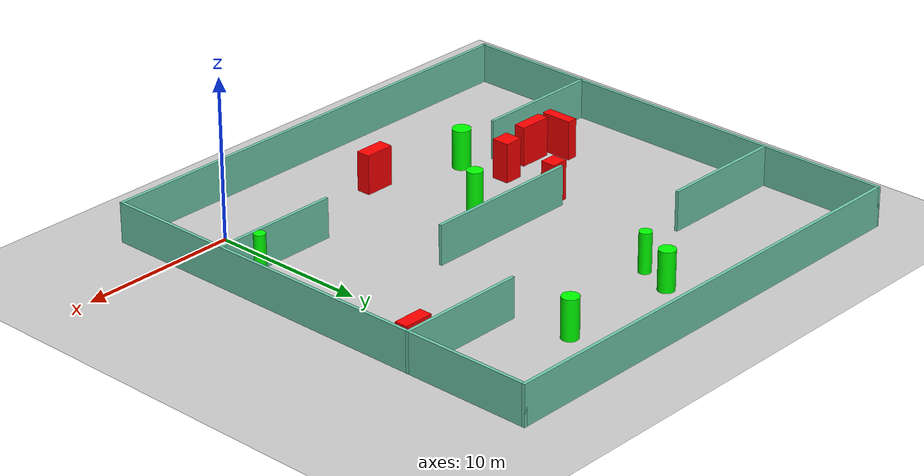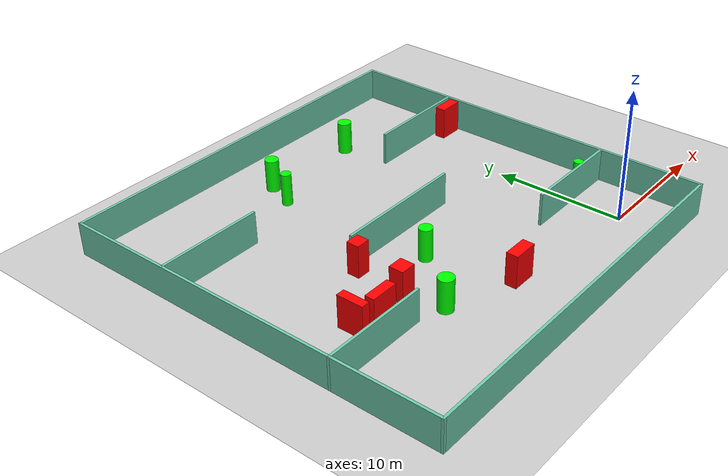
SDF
<sdf version="1.7">
 <world name="default">
  <light name="sun" type="directional">
   <pose>0 0 10 0 -0 0</pose>
   <diffuse>0.8 0.8 0.8 1</diffuse>
   <specular>0.2 0.2 0.2 1</specular>
   <attenuation>
    <range>1000</range>
    <constant>0.9</constant>
    <linear>0.01</linear>
    <quadratic>0.001</quadratic>
   </attenuation>
   <direction>-0.5 0.1 -0.9</direction>
   <spot><inner_angle>0</inner_angle><outer_angle>0</outer_angle><falloff>0</falloff></spot>
  </light>
  <model name="ground_plane">
   <static>1</static>
   <link name="link">
    <collision name="collision">
     <geometry><plane><normal>0 0 1</normal><size>100 100</size></plane></geometry>
     <surface>
      <contact><collide_bitmask>65535</collide_bitmask></contact>
      <friction><ode><mu>100</mu><mu2>50</mu2></ode></friction>
     </surface>
    </collision>
    <visual name="visual">
     <cast_shadows>0</cast_shadows>
     <geometry><plane><normal>0 0 1</normal><size>100 100</size></plane></geometry>
     <material>
      <script><uri>file://media/materials/scripts/gazebo.material</uri><name>Gazebo/Grey</name></script>
     </material>
    </visual>
   </link>
  </model>
  <gravity>0 0 -9.8</gravity>
  <magnetic_field>6e-06 2.3e-05 -4.2e-05</magnetic_field>
  <atmosphere type="adiabatic"/>
  <physics type="ode">
   <max_step_size>0.001</max_step_size>
   <real_time_factor>1</real_time_factor>
   <real_time_update_rate>1000</real_time_update_rate>
  </physics>
  <scene><ambient>0.4 0.4 0.4 1</ambient><background>0.7 0.7 0.7 1</background><shadows>1</shadows></scene>
  <spherical_coordinates>
   <surface_model>EARTH_WGS84</surface_model>
   <latitude_deg>0</latitude_deg>
   <longitude_deg>0</longitude_deg>
   <elevation>0</elevation>
   <heading_deg>0</heading_deg>
  </spherical_coordinates>
  <model name="my_base_walls">
   <link name="Wall_10">
    <collision name="Wall_10_Collision">
     <geometry><box><size>8.2 0.2 2.5</size></box></geometry>
     <pose>0 0 1.25 0 -0 0</pose>
    </collision>
    <visual name="Wall_10_Visual">
     <pose>0 0 1.25 0 -0 0</pose>
     <geometry><box><size>8.2 0.2 2.5</size></box></geometry>
     <material>
      <script><uri>file://media/materials/scripts/gazebo.material</uri><name>Gazebo/Grey</name></script>
      <ambient>0.435294 0.796078 0.67451 1</ambient>
     </material>
     <meta><layer>0</layer></meta>
    </visual>
    <pose>-11 -7 0 0 -0 0</pose>
   </link>
   <link name="Wall_12">
    <collision name="Wall_12_Collision">
     <geometry><box><size>8.2 0.2 2.5</size></box></geometry>
     <pose>0 0 1.25 0 -0 0</pose>
    </collision>
    <visual name="Wall_12_Visual">
     <pose>0 0 1.25 0 -0 0</pose>
     <geometry><box><size>8.2 0.2 2.5</size></box></geometry>
     <material>
      <script><uri>file://media/materials/scripts/gazebo.material</uri><name>Gazebo/Grey</name></script>
      <ambient>0.435294 0.796078 0.67451 1</ambient>
     </material>
     <meta><layer>0</layer></meta>
    </visual>
    <pose>-11 7 0 0 -0 0</pose>
   </link>
   <link name="Wall_14">
    <collision name="Wall_14_Collision">
     <geometry><box><size>8.2 0.2 2.5</size></box></geometry>
     <pose>0 0 1.25 0 -0 0</pose>
    </collision>
    <visual name="Wall_14_Visual">
     <pose>0 0 1.25 0 -0 0</pose>
     <geometry><box><size>8.2 0.2 2.5</size></box></geometry>
     <material>
      <script><uri>file://media/materials/scripts/gazebo.material</uri><name>Gazebo/Grey</name></script>
      <ambient>0.435294 0.796078 0.67451 1</ambient>
     </material>
     <meta><layer>0</layer></meta>
    </visual>
    <pose>11 7 0 0 -0 3.14159</pose>
   </link>
   <link name="Wall_16">
    <collision name="Wall_16_Collision">
     <geometry><box><size>10.2 0.2 2.5</size></box></geometry>
     <pose>0 0 1.25 0 -0 0</pose>
    </collision>
    <visual name="Wall_16_Visual">
     <pose>0 0 1.25 0 -0 0</pose>
     <geometry><box><size>10.2 0.2 2.5</size></box></geometry>
     <material>
      <script><uri>file://media/materials/scripts/gazebo.material</uri><name>Gazebo/Grey</name></script>
      <ambient>0.435294 0.796078 0.67451 1</ambient>
     </material>
     <meta><layer>0</layer></meta>
    </visual>
    <pose>0 0 0 0 -0 3.14159</pose>
   </link>
   <link name="Wall_2">
    <collision name="Wall_2_Collision">
     <geometry><box><size>30.2 0.2 2.5</size></box></geometry>
     <pose>0 0 1.25 0 -0 0</pose>
    </collision>
    <visual name="Wall_2_Visual">
     <pose>0 0 1.25 0 -0 0</pose>
     <geometry><box><size>30.2 0.2 2.5</size></box></geometry>
     <material>
      <script><uri>file://media/materials/scripts/gazebo.material</uri><name>Gazebo/Grey</name></script>
      <ambient>0.435294 0.796078 0.67451 1</ambient>
     </material>
     <meta><layer>0</layer></meta>
    </visual>
    <pose>0 -15 0 0 -0 3.14159</pose>
   </link>
   <link name="Wall_3">
    <collision name="Wall_3_Collision">
     <geometry><box><size>30.2 0.2 2.5</size></box></geometry>
     <pose>0 0 1.25 0 -0 0</pose>
    </collision>
    <visual name="Wall_3_Visual">
     <pose>0 0 1.25 0 -0 0</pose>
     <geometry><box><size>30.2 0.2 2.5</size></box></geometry>
     <material>
      <script><uri>file://media/materials/scripts/gazebo.material</uri><name>Gazebo/Grey</name></script>
      <ambient>0.435294 0.796078 0.67451 1</ambient>
     </material>
     <meta><layer>0</layer></meta>
    </visual>
    <pose>-15 0 0 0 -0 1.5708</pose>
   </link>
   <link name="Wall_4">
    <collision name="Wall_4_Collision">
     <geometry><box><size>30.2 0.2 2.5</size></box></geometry>
     <pose>0 0 1.25 0 -0 0</pose>
    </collision>
    <visual name="Wall_4_Visual">
     <pose>0 0 1.25 0 -0 0</pose>
     <geometry><box><size>30.2 0.2 2.5</size></box></geometry>
     <material>
      <script><uri>file://media/materials/scripts/gazebo.material</uri><name>Gazebo/Grey</name></script>
      <ambient>0.435294 0.796078 0.67451 1</ambient>
     </material>
     <meta><layer>0</layer></meta>
    </visual>
    <pose>0 15 0 0 -0 0</pose>
   </link>
   <link name="Wall_6">
    <collision name="Wall_6_Collision">
     <geometry><box><size>30.2 0.2 2.5</size></box></geometry>
     <pose>0 0 1.25 0 -0 0</pose>
    </collision>
    <visual name="Wall_6_Visual">
     <pose>0 0 1.25 0 -0 0</pose>
     <geometry><box><size>30.2 0.2 2.5</size></box></geometry>
     <material>
      <script><uri>file://media/materials/scripts/gazebo.material</uri><name>Gazebo/Grey</name></script>
      <ambient>0.435294 0.796078 0.67451 1</ambient>
     </material>
     <meta><layer>0</layer></meta>
    </visual>
    <pose>15 0 0 0 -0 1.5708</pose>
   </link>
   <link name="Wall_8">
    <collision name="Wall_8_Collision">
     <geometry><box><size>8.2 0.2 2.5</size></box></geometry>
     <pose>0 0 1.25 0 -0 0</pose>
    </collision>
    <visual name="Wall_8_Visual">
     <pose>0 0 1.25 0 -0 0</pose>
     <geometry><box><size>8.2 0.2 2.5</size></box></geometry>
     <material>
      <script><uri>file://media/materials/scripts/gazebo.material</uri><name>Gazebo/Grey</name></script>
      <ambient>0.435294 0.796078 0.67451 1</ambient>
     </material>
     <meta><layer>0</layer></meta>
    </visual>
    <pose>11 -7 0 0 -0 3.14159</pose>
   </link>
   <static>1</static>
   <pose>-11 11 0 0 -0 0</pose>
  </model>
  <model name="cylinder1">
   <static>1</static>
   <link name="link">
    <inertial>
     <mass>1</mass>
     <inertia><ixx>0.5</ixx><ixy>0</ixy><ixz>0</ixz><iyy>0.5</iyy><iyz>0</iyz><izz>1</izz></inertia>
    </inertial>
    <collision name="collision">
     <geometry><cylinder><radius>0.5240125677327572</radius><length>2.5</length></cylinder></geometry>
    </collision>
    <visual name="visual">
     <geometry><cylinder><radius>0.5240125677327572</radius><length>2.5</length></cylinder></geometry>
     <material>
      <ambient>0 1 0 1</ambient>
      <diffuse>0 1 0 1</diffuse>
      <specular>0.1 0.1 0.1 1</specular>
      <emissive>0 0 0 0</emissive>
     </material>
    </visual>
   </link>
   <pose>-4.476505955912412 21.69032815345718 1.25 0 0 0</pose>
  </model>
  <model name="cylinder2">
   <static>1</static>
   <link name="link">
    <inertial>
     <mass>1</mass>
     <inertia><ixx>0.5</ixx><ixy>0</ixy><ixz>0</ixz><iyy>0.5</iyy><iyz>0</iyz><izz>1</izz></inertia>
    </inertial>
    <collision name="collision">
     <geometry><cylinder><radius>0.49821827996986834</radius><length>2.5</length></cylinder></geometry>
    </collision>
    <visual name="visual">
     <geometry><cylinder><radius>0.49821827996986834</radius><length>2.5</length></cylinder></geometry>
     <material>
      <ambient>0 1 0 1</ambient>
      <diffuse>0 1 0 1</diffuse>
      <specular>0.1 0.1 0.1 1</specular>
      <emissive>0 0 0 0</emissive>
     </material>
    </visual>
   </link>
   <pose>-12.28555588062819 7.751722992627892 1.25 0 0 0</pose>
  </model>
  <model name="cylinder3">
   <static>1</static>
   <link name="link">
    <inertial>
     <mass>1</mass>
     <inertia><ixx>0.5</ixx><ixy>0</ixy><ixz>0</ixz><iyy>0.5</iyy><iyz>0</iyz><izz>1</izz></inertia>
    </inertial>
    <collision name="collision">
     <geometry><cylinder><radius>0.5781552221268884</radius><length>2.5</length></cylinder></geometry>
    </collision>
    <visual name="visual">
     <geometry><cylinder><radius>0.5781552221268884</radius><length>2.5</length></cylinder></geometry>
     <material>
      <ambient>0 1 0 1</ambient>
      <diffuse>0 1 0 1</diffuse>
      <specular>0.1 0.1 0.1 1</specular>
      <emissive>0 0 0 0</emissive>
     </material>
    </visual>
   </link>
   <pose>-15.918233340697139 3.3667541741993627 1.25 0 0 0</pose>
  </model>
  <model name="cylinder4">
   <static>1</static>
   <link name="link">
    <inertial>
     <mass>1</mass>
     <inertia><ixx>0.5</ixx><ixy>0</ixy><ixz>0</ixz><iyy>0.5</iyy><iyz>0</iyz><izz>1</izz></inertia>
    </inertial>
    <collision name="collision">
     <geometry><cylinder><radius>0.3879290019739724</radius><length>2.5</length></cylinder></geometry>
    </collision>
    <visual name="visual">
     <geometry><cylinder><radius>0.3879290019739724</radius><length>2.5</length></cylinder></geometry>
     <material>
      <ambient>0 1 0 1</ambient>
      <diffuse>0 1 0 1</diffuse>
      <specular>0.1 0.1 0.1 1</specular>
      <emissive>0 0 0 0</emissive>
     </material>
    </visual>
   </link>
   <pose>-12.912665113859187 19.83579759223141 1.25 0 0 0</pose>
  </model>
  <model name="cylinder5">
   <static>1</static>
   <link name="link">
    <inertial>
     <mass>1</mass>
     <inertia><ixx>0.5</ixx><ixy>0</ixy><ixz>0</ixz><iyy>0.5</iyy><iyz>0</iyz><izz>1</izz></inertia>
    </inertial>
    <collision name="collision">
     <geometry><cylinder><radius>0.3575640855265628</radius><length>2.5</length></cylinder></geometry>
    </collision>
    <visual name="visual">
     <geometry><cylinder><radius>0.3575640855265628</radius><length>2.5</length></cylinder></geometry>
     <material>
      <ambient>0 1 0 1</ambient>
      <diffuse>0 1 0 1</diffuse>
      <specular>0.1 0.1 0.1 1</specular>
      <emissive>0 0 0 0</emissive>
     </material>
    </visual>
   </link>
   <pose>1.478976483659082 4.392938628188123 1.25 0 0 0</pose>
  </model>
  <model name="cylinder6">
   <static>1</static>
   <link name="link">
    <inertial>
     <mass>1</mass>
     <inertia><ixx>0.5</ixx><ixy>0</ixy><ixz>0</ixz><iyy>0.5</iyy><iyz>0</iyz><izz>1</izz></inertia>
    </inertial>
    <collision name="collision">
     <geometry><cylinder><radius>0.5133454078234854</radius><length>2.5</length></cylinder></geometry>
    </collision>
    <visual name="visual">
     <geometry><cylinder><radius>0.5133454078234854</radius><length>2.5</length></cylinder></geometry>
     <material>
      <ambient>0 1 0 1</ambient>
      <diffuse>0 1 0 1</diffuse>
      <specular>0.1 0.1 0.1 1</specular>
      <emissive>0 0 0 0</emissive>
     </material>
    </visual>
   </link>
   <pose>-12.078911515969656 22.04261855652612 1.25 0 0 0</pose>
  </model>
  <model name="box1">
   <static>1</static>
   <link name="link">
    <inertial>
     <mass>1</mass>
     <inertia><ixx>0.083</ixx><ixy>0</ixy><ixz>0</ixz><iyy>0.083</iyy><iyz>0</iyz><izz>0.083</izz></inertia>
    </inertial>
    <collision name="collision">
     <geometry><box><size>0.6593336665098478 2.0295318605748136 2.5</size></box></geometry>
    </collision>
    <visual name="visual">
     <geometry><box><size>0.6593336665098478 2.0295318605748136 2.5</size></box></geometry>
     <material>
      <ambient>1 0 0 1</ambient>
      <diffuse>1 0 0 1</diffuse>
      <specular>0.1 0.1 0.1 1</specular>
      <emissive>0 0 0 0</emissive>
     </material>
    </visual>
    <sensor name="my_contact" type="contact">
     <contact><collision>box_collision</collision><topic>__default_topic__</topic></contact>
    </sensor>
   </link>
   <pose>-21.126106339734644 6.455318350802081 1.25 0 0 0</pose>
  </model>
  <model name="box2">
   <static>1</static>
   <link name="link">
    <inertial>
     <mass>1</mass>
     <inertia><ixx>0.083</ixx><ixy>0</ixy><ixz>0</ixz><iyy>0.083</iyy><iyz>0</iyz><izz>0.083</izz></inertia>
    </inertial>
    <collision name="collision">
     <geometry><box><size>1.8735056238569119 0.8171309436889633 2.5</size></box></geometry>
    </collision>
    <visual name="visual">
     <geometry><box><size>1.8735056238569119 0.8171309436889633 2.5</size></box></geometry>
     <material>
      <ambient>1 0 0 1</ambient>
      <diffuse>1 0 0 1</diffuse>
      <specular>0.1 0.1 0.1 1</specular>
      <emissive>0 0 0 0</emissive>
     </material>
    </visual>
    <sensor name="my_contact" type="contact">
     <contact><collision>box_collision</collision><topic>__default_topic__</topic></contact>
    </sensor>
   </link>
   <pose>2.806226114572169 17.23899744454517 1.25 0 0 0</pose>
  </model>
  <model name="box3">
   <static>1</static>
   <link name="link">
    <inertial>
     <mass>1</mass>
     <inertia><ixx>0.083</ixx><ixy>0</ixy><ixz>0</ixz><iyy>0.083</iyy><iyz>0</iyz><izz>0.083</izz></inertia>
    </inertial>
    <collision name="collision">
     <geometry><box><size>1.9166636396528516 0.8973425240604943 2.5</size></box></geometry>
    </collision>
    <visual name="visual">
     <geometry><box><size>1.9166636396528516 0.8973425240604943 2.5</size></box></geometry>
     <material>
      <ambient>1 0 0 1</ambient>
      <diffuse>1 0 0 1</diffuse>
      <specular>0.1 0.1 0.1 1</specular>
      <emissive>0 0 0 0</emissive>
     </material>
    </visual>
    <sensor name="my_contact" type="contact">
     <contact><collision>box_collision</collision><topic>__default_topic__</topic></contact>
    </sensor>
   </link>
   <pose>-10.46465494248489 1.523197964168089 1.25 0 0 0</pose>
  </model>
  <model name="box4">
   <static>1</static>
   <link name="link">
    <inertial>
     <mass>1</mass>
     <inertia><ixx>0.083</ixx><ixy>0</ixy><ixz>0</ixz><iyy>0.083</iyy><iyz>0</iyz><izz>0.083</izz></inertia>
    </inertial>
    <collision name="collision">
     <geometry><box><size>1.0626229857513718 0.9668555017906891 2.5</size></box></geometry>
    </collision>
    <visual name="visual">
     <geometry><box><size>1.0626229857513718 0.9668555017906891 2.5</size></box></geometry>
     <material>
      <ambient>1 0 0 1</ambient>
      <diffuse>1 0 0 1</diffuse>
      <specular>0.1 0.1 0.1 1</specular>
      <emissive>0 0 0 0</emissive>
     </material>
    </visual>
    <sensor name="my_contact" type="contact">
     <contact><collision>box_collision</collision><topic>__default_topic__</topic></contact>
    </sensor>
   </link>
   <pose>-16.261745306796918 10.245645748855079 1.25 0 0 0</pose>
  </model>
  <model name="box5">
   <static>1</static>
   <link name="link">
    <inertial>
     <mass>1</mass>
     <inertia><ixx>0.083</ixx><ixy>0</ixy><ixz>0</ixz><iyy>0.083</iyy><iyz>0</iyz><izz>0.083</izz></inertia>
    </inertial>
    <collision name="collision">
     <geometry><box><size>2.0900010787041294 0.7232492294914092 2.5</size></box></geometry>
    </collision>
    <visual name="visual">
     <geometry><box><size>2.0900010787041294 0.7232492294914092 2.5</size></box></geometry>
     <material>
      <ambient>1 0 0 1</ambient>
      <diffuse>1 0 0 1</diffuse>
      <specular>0.1 0.1 0.1 1</specular>
      <emissive>0 0 0 0</emissive>
     </material>
    </visual>
    <sensor name="my_contact" type="contact">
     <contact><collision>box_collision</collision><topic>__default_topic__</topic></contact>
    </sensor>
   </link>
   <pose>-19.42705830044185 5.721110931900881 1.25 0 0 0</pose>
  </model>
  <model name="box6">
   <static>1</static>
   <link name="link">
    <inertial>
     <mass>1</mass>
     <inertia><ixx>0.083</ixx><ixy>0</ixy><ixz>0</ixz><iyy>0.083</iyy><iyz>0</iyz><izz>0.083</izz></inertia>
    </inertial>
    <collision name="collision">
     <geometry><box><size>1.180726337862962 1.1136155777534027 2.5</size></box></geometry>
    </collision>
    <visual name="visual">
     <geometry><box><size>1.180726337862962 1.1136155777534027 2.5</size></box></geometry>
     <material>
      <ambient>1 0 0 1</ambient>
      <diffuse>1 0 0 1</diffuse>
      <specular>0.1 0.1 0.1 1</specular>
      <emissive>0 0 0 0</emissive>
     </material>
    </visual>
    <sensor name="my_contact" type="contact">
     <contact><collision>box_collision</collision><topic>__default_topic__</topic></contact>
    </sensor>
   </link>
   <pose>-16.636212828592214 6.297323644549012 1.25 0 0 0</pose>
  </model>
 </world>
</sdf>
